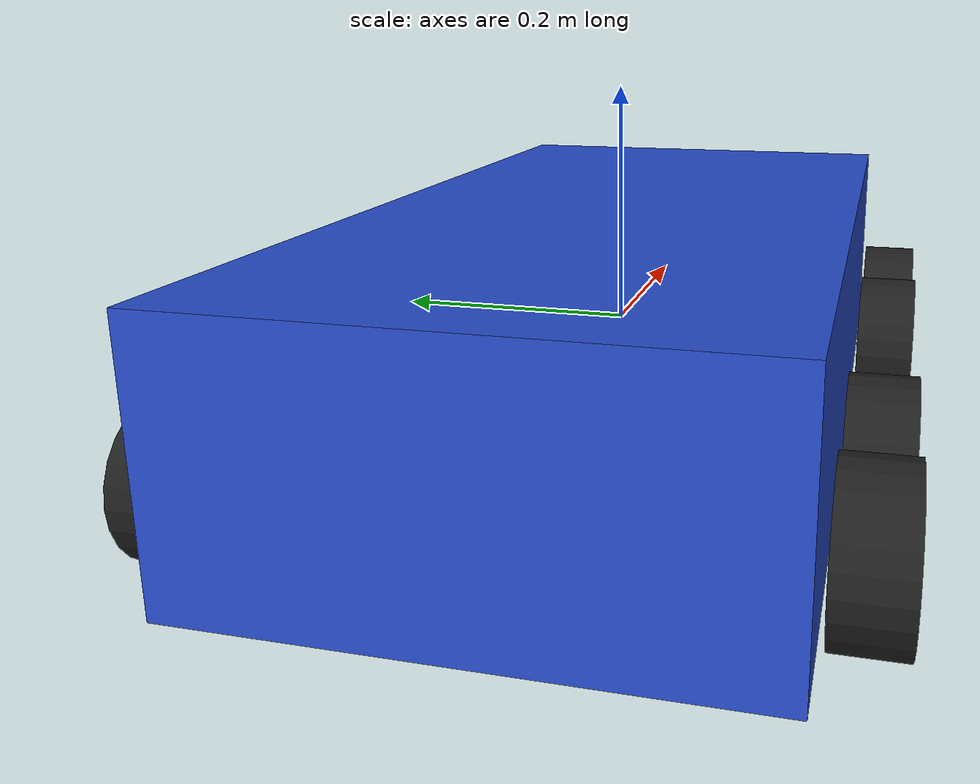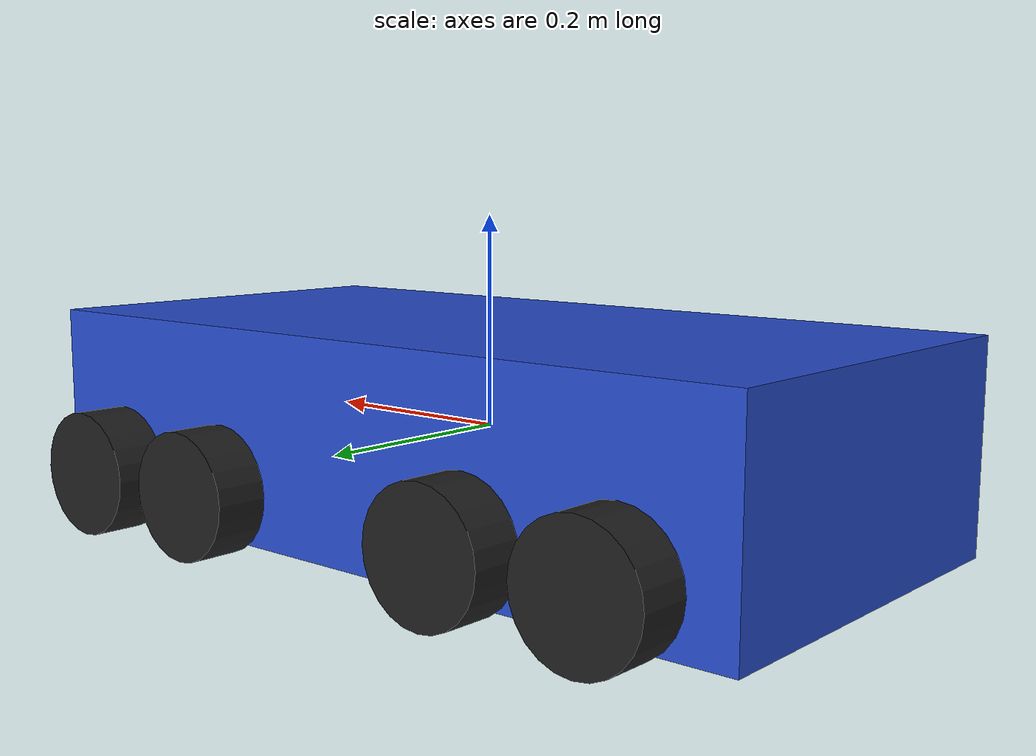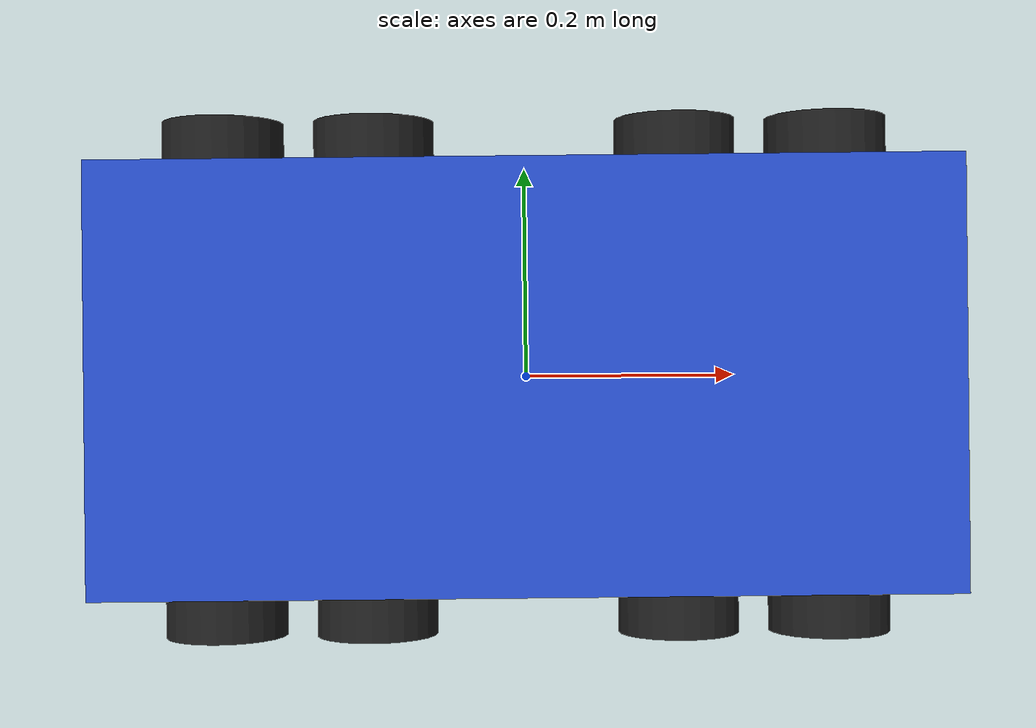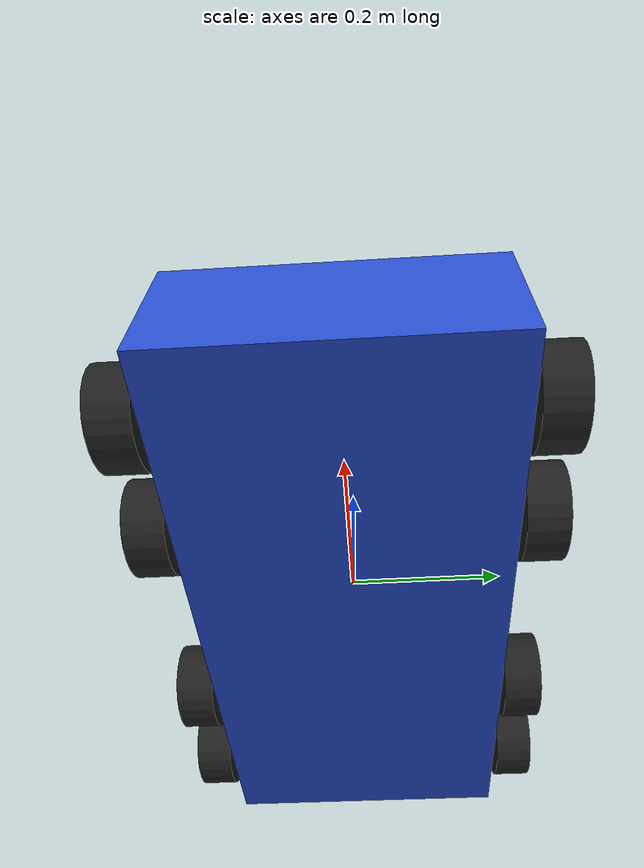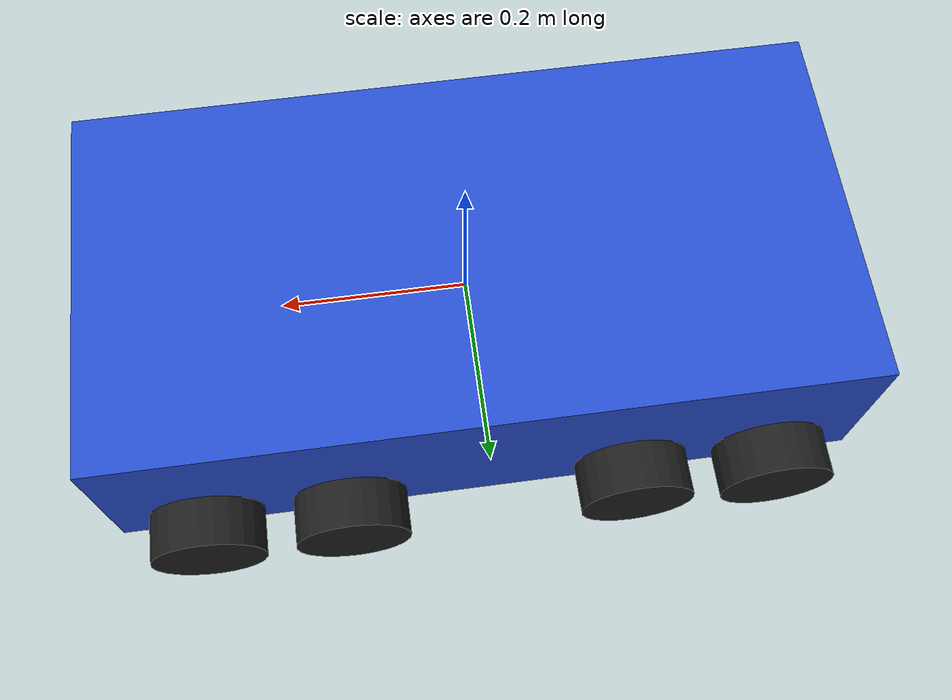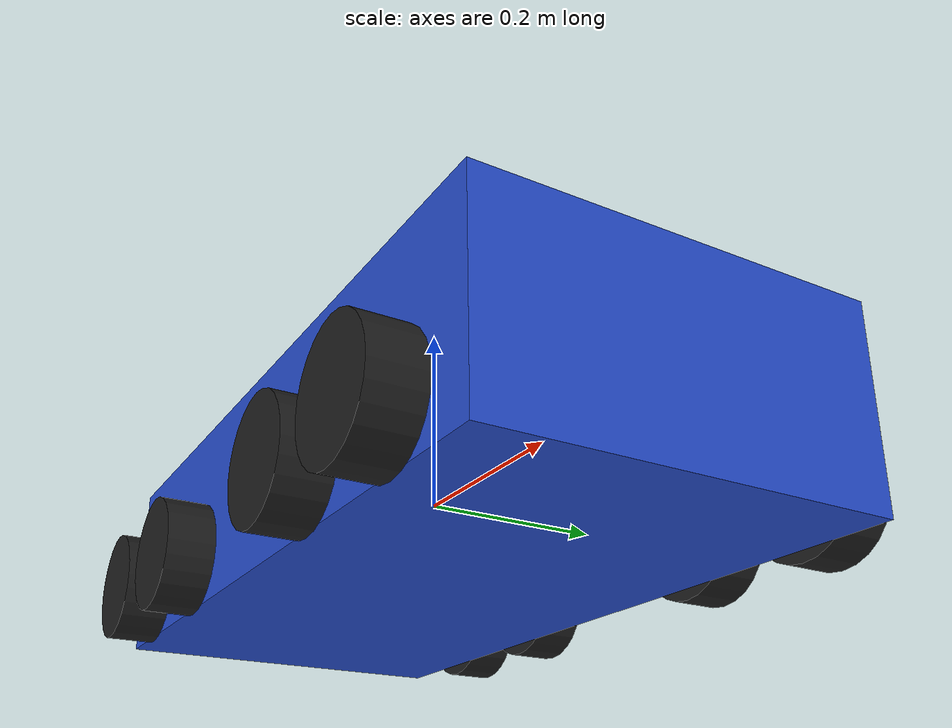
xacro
<?xml version="1.0"?>
<robot name="roscontrol" xmlns:xacro="http://ros.org/wiki/xacro">

    <xacro:property name="WheelSep" value="0.46"/>
    <xacro:property name="WheelRad" value="0.06"/>
    <xacro:property name="WheelLen" value="0.05"/>
    <xacro:property name="WheelPoss" value="0.15"/>
    <xacro:property name="WheelPossZ" value="-0.05"/>

    <xacro:macro name="default_inertial" params="mass">
        <inertial>
            <mass value="${mass}" />
            <inertia ixx="1.0" ixy="0.0" ixz="0.0" iyy="1.0" iyz="0.0" izz="1.0" />
        </inertial>
    </xacro:macro>

    <link name="base_link">
        <visual>
            <geometry>
                <box size="0.8 0.4 0.2"/>
            </geometry>
            <material name="blue"/>
        </visual>
        <collision>
            <geometry>
                <box size="0.8 0.4 0.2"/>
            </geometry>
        </collision>
        <xacro:default_inertial mass="10"/>
    </link>
    <gazebo reference="base_link">
        <material>Gazebo/Orange</material>
    </gazebo>

    <!-- wheels -->
    <xacro:macro name="wheels" params = "prefex reflect">
        <!-- back wheels -->
        <link name="${prefex}_back_wheel">
            <visual>
                <origin rpy="1.57075 0 0" xyz="0 0 0"/>
                <geometry>
                    <cylinder length="${WheelLen}" radius="${WheelRad}"/>
                </geometry>
                <material name="black"/>
            </visual>
            <collision>
                <geometry>
                    <cylinder length="${WheelLen}" radius="${WheelRad}"/>
                </geometry>
            </collision>
            <xacro:default_inertial mass="1"/>
        </link>
        <joint name="${prefex}_back_wheel_joint" type="continuous">
            <axis xyz="0 1 0" rpy="0 0 0" />
            <parent link="base_link"/>
            <child link="${prefex}_back_wheel"/>
            <origin rpy="0 0 0" xyz="-${WheelPoss*2} ${reflect*WheelSep/2} ${WheelPossZ}"/>
        </joint>
        <gazebo reference="${prefex}_back_wheel">
            <material>Gazebo/Black</material>
        </gazebo>
        <gazebo reference="${prefex}_back_wheel">
            <kp>1000000.0</kp>
            <kd>1.0</kd>
            <mu1>0.8</mu1>
            <mu2>0.8</mu2>
            <maxVel>0.0</maxVel>
            <minDepth>0.001</minDepth>
        </gazebo>

        <link name="${prefex}_back_M_wheel">
            <visual>
                <origin rpy="1.57075 0 0" xyz="0 0 0"/>
                <geometry>
                    <cylinder length="${WheelLen}" radius="${WheelRad}"/>
                </geometry>
                <material name="black"/>
            </visual>
            <collision>
                <geometry>
                    <cylinder length="${WheelLen}" radius="${WheelRad}"/>
                </geometry>
            </collision>
            <xacro:default_inertial mass="1"/>
        </link>
        <joint name="${prefex}_back_M_wheel_joint" type="continuous">
            <axis xyz="0 1 0" rpy="0 0 0" />
            <parent link="base_link"/>
            <child link="${prefex}_back_M_wheel"/>
            <origin rpy="0 0 0" xyz="-${WheelPoss} ${reflect*WheelSep/2} ${WheelPossZ}"/>
        </joint>
        <gazebo reference="${prefex}_back_M_wheel">
            <material>Gazebo/Black</material>
        </gazebo>
        <gazebo reference="${prefex}_back_M_wheel">
            <kp>1000000.0</kp>
            <kd>1.0</kd>
            <mu1>0.8</mu1>
            <mu2>0.8</mu2>
            <maxVel>0.0</maxVel>
            <minDepth>0.001</minDepth>
        </gazebo>

        <!-- front wheels -->
        <link name="${prefex}_front_M_wheel">
            <visual>
                <origin rpy="1.57075 0 0" xyz="0 0 0"/>
                <geometry>
                    <cylinder length="${WheelLen}" radius="${WheelRad}"/>
                </geometry>
                <material name="black"/>
            </visual>
            <collision>
                <geometry>
                    <cylinder length="${WheelLen}" radius="${WheelRad}"/>
                </geometry>
            </collision>
            <xacro:default_inertial mass="1"/>
        </link>
        <joint name="${prefex}_front_M_wheel_joint" type="continuous">
            <axis xyz="0 1 0" rpy="0 0 0" />
            <parent link="base_link"/>
            <child link="${prefex}_front_M_wheel"/>
            <origin rpy="0 0 0" xyz="${WheelPoss} ${reflect*WheelSep/2} ${WheelPossZ}"/>
        </joint>
        <gazebo reference="${prefex}_front_M_wheel">
            <material>Gazebo/Black</material>
        </gazebo>
        <gazebo reference="${prefex}_front_M_wheel">
            <kp>1000000.0</kp>
            <kd>1.0</kd>
            <mu1>0.8</mu1>
            <mu2>0.8</mu2>
            <maxVel>0.0</maxVel>
            <minDepth>0.001</minDepth>
        </gazebo>

        <link name="${prefex}_front_wheel">
            <visual>
                <origin rpy="1.57075 0 0" xyz="0 0 0"/>
                <geometry>
                    <cylinder length="${WheelLen}" radius="${WheelRad}"/>
                </geometry>
                <material name="black"/>
            </visual>
            <collision>
                <geometry>
                    <cylinder length="${WheelLen}" radius="${WheelRad}"/>
                </geometry>
            </collision>
            <xacro:default_inertial mass="1"/>
        </link>
        <joint name="${prefex}_front_wheel_joint" type="continuous">
            <axis xyz="0 1 0" rpy="0 0 0" />
            <parent link="base_link"/>
            <child link="${prefex}_front_wheel"/>
            <origin rpy="0 0 0" xyz="${WheelPoss*2} ${reflect*WheelSep/2} ${WheelPossZ}"/>
        </joint>
        <gazebo reference="${prefex}_front_wheel">
            <material>Gazebo/Black</material>
        </gazebo>
        <gazebo reference="${prefex}_front_wheel">
            <kp>1000000.0</kp>
            <kd>1.0</kd>
            <mu1>0.8</mu1>
            <mu2>0.8</mu2>
            <maxVel>0.0</maxVel>
            <minDepth>0.001</minDepth>
        </gazebo>
    </xacro:macro>

    <xacro:wheels prefex = "right" reflect = "-1"/>
    <xacro:wheels prefex = "left" reflect = "1"/>

    <!-- Gazebo plugin for ROS Control -->
    <gazebo>
        <plugin name="gazebo_ros_control" filename="libgazebo_ros_control.so">
            <robotNamespace>/</robotNamespace>
        </plugin>
    </gazebo>
    <gazebo>
        <plugin name="differential_drive_controller" filename="libgazebo_ros_diff_drive_multiwheel.so">

            <updateRate>50</updateRate>
            <leftJoints>left_back_wheel_joint left_back_M_wheel_joint left_front_M_wheel_joint left_front_wheel_joint</leftJoints>
            <rightJoints>right_back_wheel_joint right_back_M_wheel_joint right_front_M_wheel_joint right_front_wheel_joint</rightJoints>
            <wheelSeparation>${WheelSep}</wheelSeparation>
            <wheelDiameter>${WheelRad*2}</wheelDiameter>
            <wheelAcceleration>0.2</wheelAcceleration>
            <wheelTorque>5</wheelTorque>
            <commandTopic>diff_drive_controller/cmd_vel</commandTopic>
            <odometryTopic>odom</odometryTopic>
            <odometryFrame>odom</odometryFrame>
            <robotBaseFrame>base_link</robotBaseFrame>
            <odometrySource>1</odometrySource>
            <publishWheelTF>true</publishWheelTF>
            <publishOdomTF>true</publishOdomTF>
            <publishWheelJointState>true</publishWheelJointState>
            <legacyMode>false</legacyMode>
        </plugin>
    </gazebo>
</robot>
